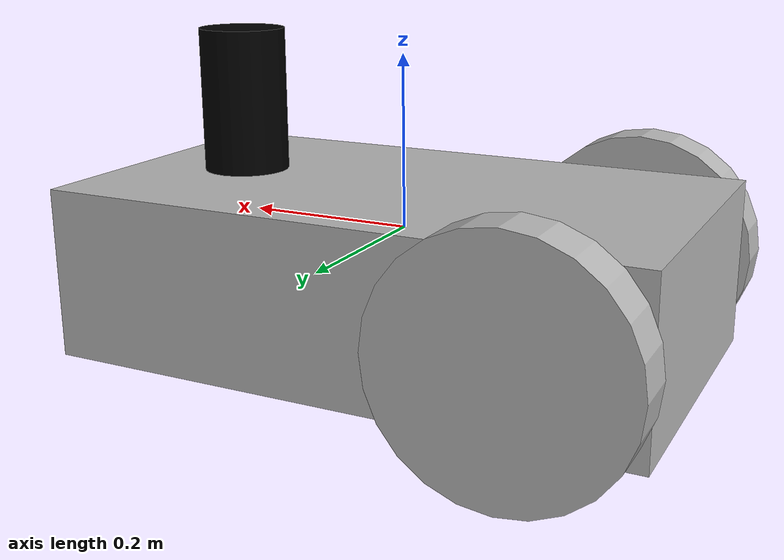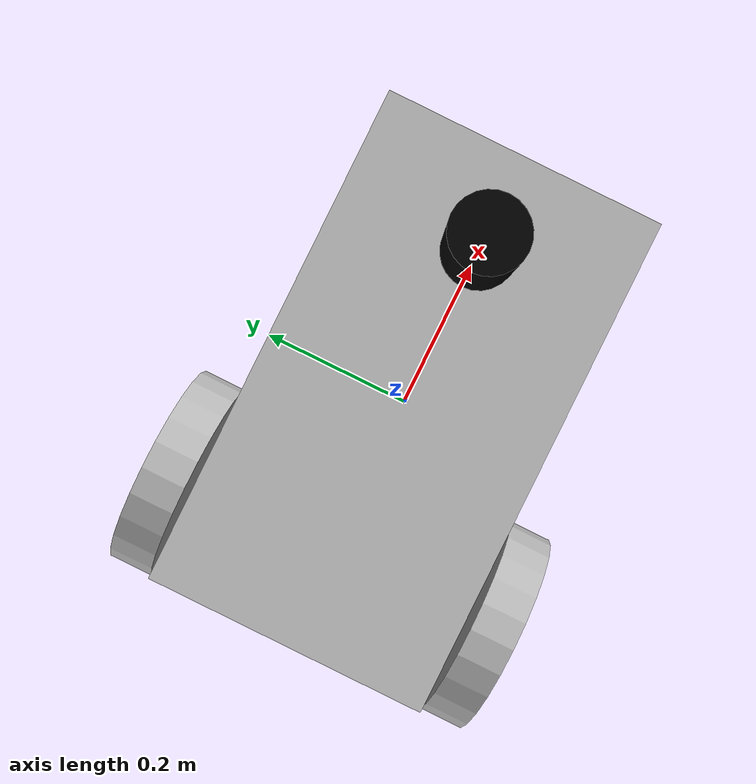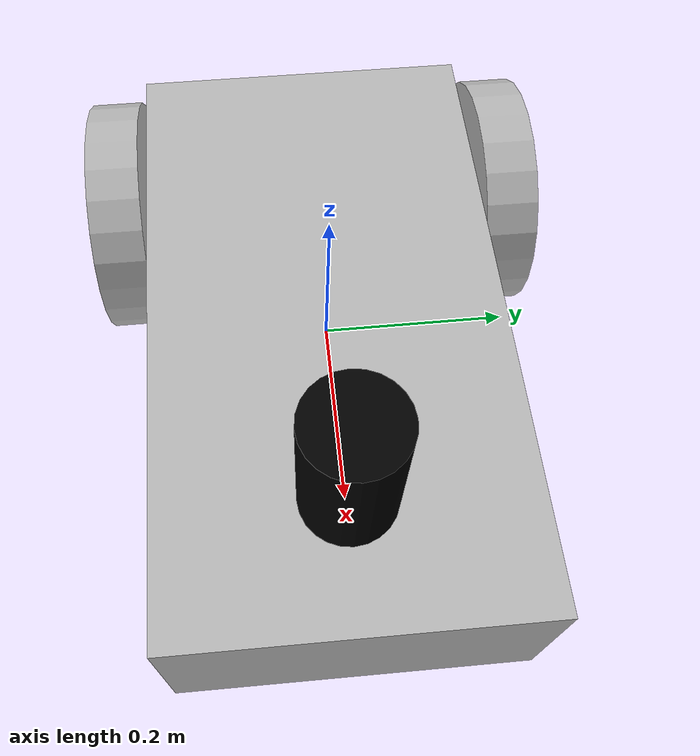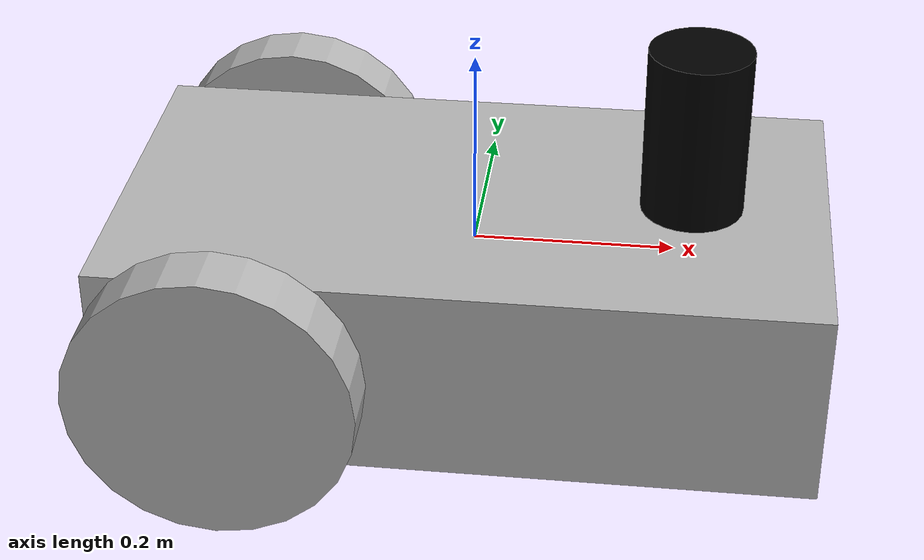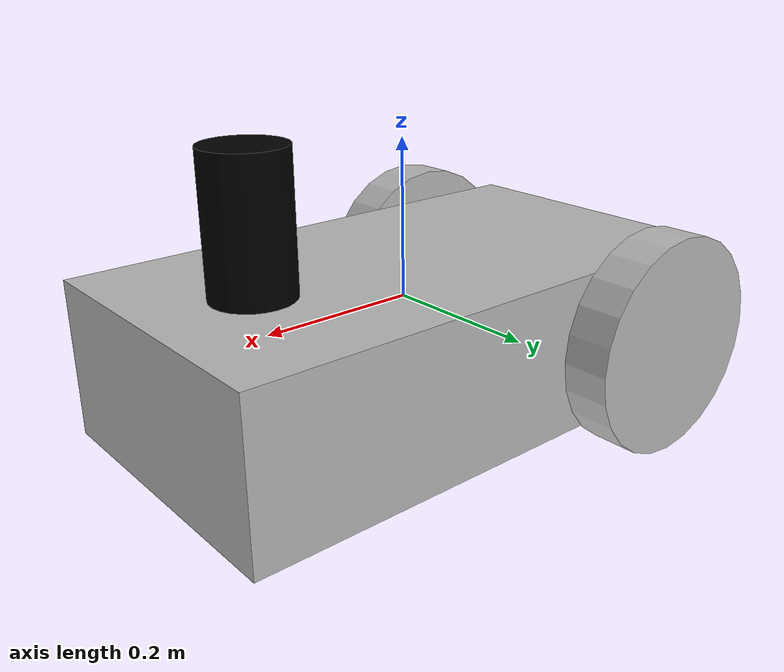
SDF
<?xml version="1.0"?>
<sdf version="1.4">
   <model name="simple_bot">
      <static>false</static>
      <pose>0.0 0.0 0.0 0.0 0.0 0.0</pose>
      <link name="base_footprint"/>

      <link name="base_link">

         <collision name="base_collision">
         <pose>0 0 0.1 0 0 0</pose>
         <geometry>
           <box>
             <size>0.70 0.39 0.20</size>
           </box>
         </geometry>
       </collision>

       <visual name="base_visual">
         <pose>0 0 -0.05 1.5707963267949 0 3.141592654</pose>
         <geometry>
           <box>
             <size>0.70 0.20 0.39</size>
           </box>
         </geometry>
       </visual>
      </link>

      <link name="imu_link">
          <gravity>true</gravity>
          <sensor name="bmb_imu" type="imu">
            <always_on>true</always_on>
            <update_rate>100</update_rate>
            <visualize>true</visualize>
            <imu>
              <orientation>
                <x>
                  <noise type="gaussian">
                    <mean>0.0</mean>
                    <stddev>2e-3</stddev>
                  </noise>
                </x>
                <y>
                  <noise type="gaussian">
                    <mean>0.0</mean>
                    <stddev>2e-3</stddev>
                  </noise>
                </y>
                <z>
                  <noise type="gaussian">
                    <mean>0.0</mean>
                    <stddev>2e-3</stddev>
                  </noise>
                </z>
              </orientation>
              <angular_velocity>
                <x>
                  <noise type="gaussian">
                    <mean>0.0</mean>
                    <stddev>2e-4</stddev>
                  </noise>
                </x>
                <y>
                  <noise type="gaussian">
                    <mean>0.0</mean>
                    <stddev>2e-4</stddev>
                  </noise>
                </y>
                <z>
                  <noise type="gaussian">
                    <mean>0.0</mean>
                    <stddev>2e-4</stddev>
                  </noise>
                </z>
              </angular_velocity>
              <linear_acceleration>
                <x>
                  <noise type="gaussian">
                    <mean>0.0</mean>
                    <stddev>1.7e-2</stddev>
                  </noise>
                </x>
                <y>
                  <noise type="gaussian">
                    <mean>0.0</mean>
                    <stddev>1.7e-2</stddev>
                  </noise>
                </y>
                <z>
                  <noise type="gaussian">
                    <mean>0.0</mean>
                    <stddev>1.7e-2</stddev>
                  </noise>
                </z>
              </linear_acceleration>
            </imu>
            <plugin name="simple_bot_imu" filename="libgazebo_ros_imu_sensor.so">
              <initial_orientation_as_reference>false</initial_orientation_as_reference>
              <frame_name>imu_link</frame_name>
              <ros>
                <namespace>/imu</namespace>
                <remapping>~/out:=data</remapping>
              </ros>
            </plugin>
          </sensor>
      </link>

      <link name="gps_link">
         <sensor name="bmb_gps" type="gps">
            <always_on>true</always_on>
            <update_rate>10.0</update_rate>
            <gps>
              <position_sensing>
                <horizontal>
                  <noise type="gaussian">
                    <mean>0.0</mean>
                    <stddev>1e-2</stddev>
                  </noise>
                </horizontal>
                <vertical>
                  <noise type="gaussian">
                    <mean>0.0</mean>
                    <stddev>1</stddev>
                  </noise>
                </vertical>
              </position_sensing>
            </gps>
            <plugin name="sam_bot_gps" filename="libgazebo_ros_gps_sensor.so">
              <ros>
                <remapping>~/out:=gps/fix</remapping>
              </ros>
            </plugin>
         </sensor>
      </link>

      <link name="lidar_link">
          <inertial>
            <pose>0.215 0 0.13 0 0 0</pose>
            <inertia>
              <ixx>0.001</ixx>
              <ixy>0.000</ixy>
              <ixz>0.000</ixz>
              <iyy>0.001</iyy>
              <iyz>0.000</iyz>
              <izz>0.001</izz>
            </inertia>
            <mass>0.114</mass>
          </inertial>

          <collision name="lidar_collision">
            <pose>0.215 0 0.13 0 0 0</pose>
            <geometry>
              <cylinder>
                <radius>0.0508</radius>
                <length>0.18</length>
              </cylinder>
            </geometry>
          </collision>

          <visual name="lidar_visual">
            <pose>0.215 0 0.13 0 0 0</pose>
            <geometry>
              <cylinder>
                <radius>0.0508</radius>
                <length>0.18</length>
              </cylinder>
            </geometry>
            <material>
              <ambient>0.0 0.0 0.0 1.0</ambient>
              <diffuse>0.0 0.0 0.0 1.0</diffuse>
              <specular>0.0 0.0 0.0 1.0</specular>
              <emissive>0.0 0.0 0.0 1.0</emissive>
            </material>
          </visual>

          <sensor name="lidar" type="ray">
            <pose>0.215 0 0.215 0 0 0</pose>
            <always_on>true</always_on>
            <visualize>true</visualize>
            <update_rate>5</update_rate>
            <ray>
              <scan>
                <horizontal>
                  <samples>120</samples>
                  <resolution>1.000000</resolution>
                  <min_angle>-3.14159</min_angle>
                  <max_angle>3.14159</max_angle>
                </horizontal>
              </scan>
              <range>
                <min>0.3</min>
                <max>15.0</max>
                <resolution>0.015</resolution>
              </range>
              <noise>
                <type>gaussian</type>
                <mean>0.0</mean>
                <stddev>0.01</stddev>
              </noise>
            </ray>
            <plugin name="scan" filename="libgazebo_ros_ray_sensor.so">
              <ros>
                <remapping>~/out:=scan</remapping>
              </ros>
              <output_type>sensor_msgs/LaserScan</output_type>
              <frame_name>lidar_link</frame_name>
            </plugin>
          </sensor>
      </link>

      <link name="left_wheel">
         <pose>-0.221 0.23 -0.05 0 1.570796 1.570796</pose>

          <collision name="left_wheel_collision">
            <geometry>
              <cylinder>
                <radius>0.14</radius>
                <length>0.06</length>
              </cylinder>
            </geometry>
          </collision>

          <visual name="left_wheel_visual">
            <geometry>
              <cylinder>
                <radius>0.14</radius>
                <length>0.06</length>
              </cylinder>
            </geometry>
          </visual>
      </link>

      <link name="right_wheel">
         <pose>-0.221 -0.23 -0.05 0 1.570796 1.570796</pose>

          <collision name="right_wheel_collision">
            <geometry>
              <cylinder>
                <radius>0.14</radius>
                <length>0.06</length>
              </cylinder>
            </geometry>
          </collision>

          <visual name="right_wheel_visual">
            <geometry>
              <cylinder>
                <radius>0.14</radius>
                <length>0.06</length>
              </cylinder>
            </geometry>
          </visual>
      </link>

      <link name='caster'>
         <pose>0.217 0 -0.1 0 0 0</pose>
          <inertial>
            <inertia>
              <ixx>0.001</ixx>
              <ixy>0.000</ixy>
              <ixz>0.000</ixz>
              <iyy>0.001</iyy>
              <iyz>0.000</iyz>
              <izz>0.001</izz>
            </inertia>
            <mass>70.0</mass>
          </inertial>
          <collision name='collision'>
            <geometry>
              <sphere>
                <radius>0.09</radius>
              </sphere>
            </geometry>
            <surface>
              <friction>
                <ode>
                  <mu>0.01</mu>
                  <mu2>0.01</mu2>
                  <slip1>1.0</slip1>
                  <slip2>1.0</slip2>
                </ode>
              </friction>
            </surface>
          </collision>
          <visual name="caster_visual">
            <geometry>
              <sphere>
                <radius>0.09</radius>
              </sphere>
            </geometry>
          </visual>
      </link>

      <joint name="base_joint" type="fixed">
          <parent>base_footprint</parent>
          <child>base_link</child>
          <pose>0 0 0 0 0 0</pose>
      </joint>

      <joint type="revolute" name="left_wheel_hinge">
         <pose>0 0 -0.03 0 0 0</pose>
         <child>left_wheel</child>
         <parent>base_link</parent>
         <axis>
            <xyz>0 1 0</xyz>
         </axis>
      </joint>

      <joint type="revolute" name="right_wheel_hinge">
         <pose>0 0 0.03 0 0 0</pose>
         <child>right_wheel</child>
         <parent>base_link</parent>
         <axis>
            <xyz>0 1 0</xyz>
         </axis>
      </joint>

      <joint name='caster_wheel' type='fixed'>
         <parent>base_link</parent>
         <child>caster</child>
      </joint>

      <joint name="imu_joint" type="fixed">
          <parent>base_link</parent>
          <child>imu_link</child>
          <pose>0 0 0 0 0 0</pose>
      </joint>

      <joint name="gps_joint" type="fixed">
          <parent>base_link</parent>
          <child>gps_link</child>
          <pose>0 0 0 0 0 0</pose>
      </joint>

      <joint name="lidar_joint" type="fixed">
          <parent>base_link</parent>
          <child>lidar_link</child>
          <pose>0 0 0 0 0 0</pose>
      </joint>

      <plugin name='diff_drive' filename='libgazebo_ros_diff_drive.so'>

         <update_rate>30</update_rate>

         <!-- wheels -->
         <left_joint>left_wheel_hinge</left_joint>
         <right_joint>right_wheel_hinge</right_joint>

         <!-- kinematics -->
         <wheel_separation>0.26</wheel_separation>
         <wheel_diameter>0.2</wheel_diameter>

         <!-- Receive velocity commands on this ROS topic -->
         <command_topic>cmd_vel</command_topic>

         <!-- Publish odometry -->
         <publish_odom>true</publish_odom>

         <!-- The robot_state_publisher package is often used to publish this transform -->
         <publish_odom_tf>false</publish_odom_tf>

         <!-- The robot_state_publisher package is often used to publish this transform -->
         <publish_wheel_tf>false</publish_wheel_tf>

         <odometry_topic>odom</odometry_topic>
         <odometry_frame>odom</odometry_frame>
         <robot_base_frame>base_footprint</robot_base_frame>

         <!-- Odometry source, 0 for ENCODER, 1 for WORLD, defaults to WORLD -->
         <odometry_source>1</odometry_source>

         <!-- Change the ROS topic we will publish the odometry data to -->
         <ros>
            <remapping>odom:=wheel/odometry</remapping>
         </ros>

         <!-- limits -->
         <max_wheel_torque>20</max_wheel_torque>
         <max_wheel_acceleration>1.0</max_wheel_acceleration>

      </plugin>

      <plugin name="simple_bot_joint_state" filename="libgazebo_ros_joint_state_publisher.so">
          <ros>
            <remapping>~/out:=joint_states</remapping>
          </ros>
          <update_rate>30</update_rate>
          <joint_name>left_wheel_hinge</joint_name>
          <joint_name>right_wheel_hinge</joint_name>
      </plugin>

   </model>
</sdf>
